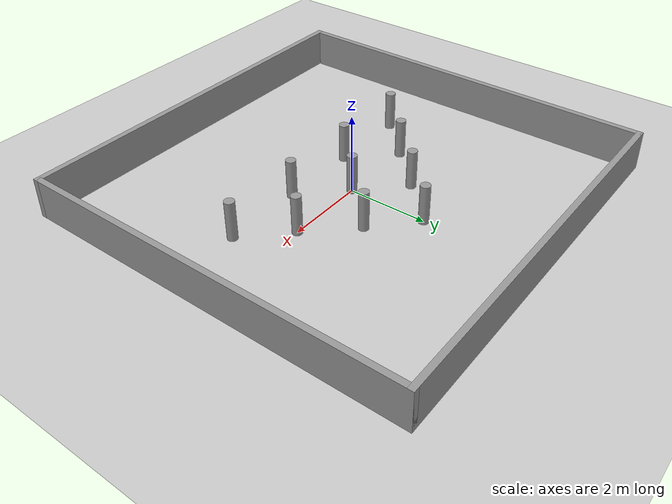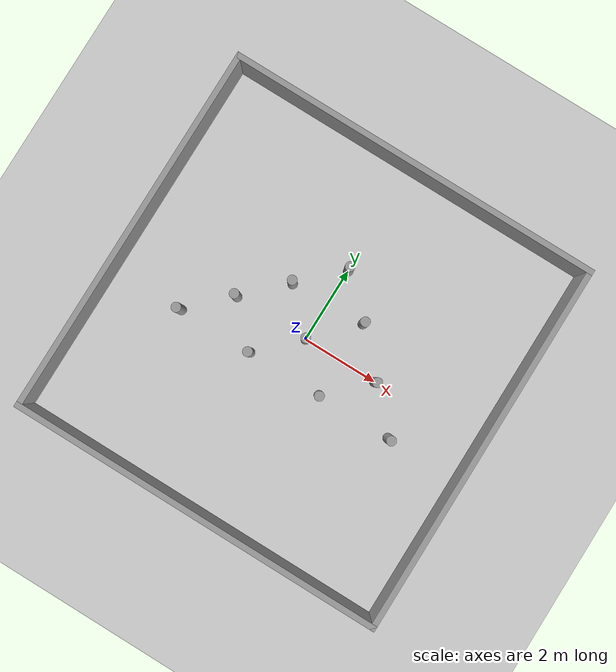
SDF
<sdf version="1.6">
 <world name="default">
  <light name="sun" type="directional">
   <pose>0 0 10 0 -0 0</pose>
   <diffuse>0.8 0.8 0.8 1</diffuse>
   <specular>0.2 0.2 0.2 1</specular>
   <attenuation>
    <range>1000</range>
    <constant>0.9</constant>
    <linear>0.01</linear>
    <quadratic>0.001</quadratic>
   </attenuation>
   <direction>-0.5 0.1 -0.9</direction>
  </light>
  <model name="ground_plane">
   <static>1</static>
   <link name="link">
    <collision name="collision">
     <geometry><plane><normal>0 0 1</normal><size>100 100</size></plane></geometry>
     <surface><friction><ode><mu>100</mu><mu2>50</mu2></ode></friction></surface>
    </collision>
    <visual name="visual">
     <cast_shadows>0</cast_shadows>
     <geometry><plane><normal>0 0 1</normal><size>100 100</size></plane></geometry>
     <material>
      <script><uri>file://media/materials/scripts/gazebo.material</uri><name>Gazebo/Grey</name></script>
     </material>
    </visual>
   </link>
  </model>
  <gravity>0 0 -9.8</gravity>
  <magnetic_field>6e-06 2.3e-05 -4.2e-05</magnetic_field>
  <atmosphere type="adiabatic"/>
  <physics name="default_physics" default="0" type="ode">
   <max_step_size>0.001</max_step_size>
   <real_time_factor>1</real_time_factor>
   <real_time_update_rate>1000</real_time_update_rate>
  </physics>
  <scene><ambient>0.4 0.4 0.4 1</ambient><background>0.7 0.7 0.7 1</background><shadows>1</shadows></scene>
  <spherical_coordinates>
   <surface_model>EARTH_WGS84</surface_model>
   <latitude_deg>0</latitude_deg>
   <longitude_deg>0</longitude_deg>
   <elevation>0</elevation>
   <heading_deg>0</heading_deg>
  </spherical_coordinates>
  <model name="Untitled">
   <pose>-0.00831 -0.012416 0 0 -0 0</pose>
   <link name="Wall_1">
    <collision name="Wall_1_Collision">
     <geometry><box><size>10 0.15 1</size></box></geometry>
     <pose>0 0 0.5 0 -0 0</pose>
    </collision>
    <visual name="Wall_1_Visual">
     <pose>0 0 0.5 0 -0 0</pose>
     <geometry><box><size>10 0.15 1</size></box></geometry>
     <material>
      <script><uri>file://media/materials/scripts/gazebo.material</uri><name>Gazebo/Grey</name></script>
      <ambient>1 1 1 1</ambient>
     </material>
     <meta><layer>0</layer></meta>
    </visual>
    <pose>-4.925 0 0 0 -0 1.5708</pose>
   </link>
   <link name="Wall_2">
    <collision name="Wall_2_Collision">
     <geometry><box><size>10 0.15 1</size></box></geometry>
     <pose>0 0 0.5 0 -0 0</pose>
    </collision>
    <visual name="Wall_2_Visual">
     <pose>0 0 0.5 0 -0 0</pose>
     <geometry><box><size>10 0.15 1</size></box></geometry>
     <material>
      <script><uri>file://media/materials/scripts/gazebo.material</uri><name>Gazebo/Grey</name></script>
      <ambient>1 1 1 1</ambient>
     </material>
     <meta><layer>0</layer></meta>
    </visual>
    <pose>-0 4.925 0 0 -0 0</pose>
   </link>
   <link name="Wall_3">
    <collision name="Wall_3_Collision">
     <geometry><box><size>10 0.15 1</size></box></geometry>
     <pose>0 0 0.5 0 -0 0</pose>
    </collision>
    <visual name="Wall_3_Visual">
     <pose>0 0 0.5 0 -0 0</pose>
     <geometry><box><size>10 0.15 1</size></box></geometry>
     <material>
      <script><uri>file://media/materials/scripts/gazebo.material</uri><name>Gazebo/Grey</name></script>
      <ambient>1 1 1 1</ambient>
     </material>
     <meta><layer>0</layer></meta>
    </visual>
    <pose>4.925 0 0 0 -0 -1.5708</pose>
   </link>
   <link name="Wall_4">
    <collision name="Wall_4_Collision">
     <geometry><box><size>10 0.15 1</size></box></geometry>
     <pose>0 0 0.5 0 -0 0</pose>
    </collision>
    <visual name="Wall_4_Visual">
     <pose>0 0 0.5 0 -0 0</pose>
     <geometry><box><size>10 0.15 1</size></box></geometry>
     <material>
      <script><uri>file://media/materials/scripts/gazebo.material</uri><name>Gazebo/Grey</name></script>
      <ambient>1 1 1 1</ambient>
     </material>
     <meta><layer>0</layer></meta>
    </visual>
    <pose>-0 -4.925 0 0 -0 3.14159</pose>
   </link>
   <static>1</static>
  </model>
  <model name="unit_cylinder">
   <pose>-0.999999 -1 0.499991 -0 -0 -8e-06</pose>
   <link name="link">
    <inertial>
     <mass>1</mass>
     <inertia><ixx>0.145833</ixx><ixy>0</ixy><ixz>0</ixz><iyy>0.145833</iyy><iyz>0</iyz><izz>0.125</izz></inertia>
    </inertial>
    <collision name="collision">
     <geometry><cylinder><radius>0.124931</radius><length>1</length></cylinder></geometry>
    </collision>
    <visual name="visual">
     <geometry><cylinder><radius>0.124931</radius><length>1</length></cylinder></geometry>
     <material>
      <script><name>Gazebo/Grey</name><uri>file://media/materials/scripts/gazebo.material</uri></script>
     </material>
    </visual>
   </link>
  </model>
  <model name="unit_cylinder_clone">
   <pose>1 -1 0.499991 -0 -0 -7e-06</pose>
   <link name="link">
    <inertial>
     <mass>1</mass>
     <inertia><ixx>0.145833</ixx><ixy>0</ixy><ixz>0</ixz><iyy>0.145833</iyy><iyz>0</iyz><izz>0.125</izz></inertia>
    </inertial>
    <collision name="collision">
     <geometry><cylinder><radius>0.124931</radius><length>1</length></cylinder></geometry>
    </collision>
    <visual name="visual">
     <geometry><cylinder><radius>0.124931</radius><length>1</length></cylinder></geometry>
     <material>
      <script><name>Gazebo/Grey</name><uri>file://media/materials/scripts/gazebo.material</uri></script>
     </material>
    </visual>
   </link>
  </model>
  <model name="unit_cylinder_clone_0">
   <pose>3 -1 0.499999 0 0 -8e-06</pose>
   <link name="link">
    <inertial>
     <mass>1</mass>
     <inertia><ixx>0.145833</ixx><ixy>0</ixy><ixz>0</ixz><iyy>0.145833</iyy><iyz>0</iyz><izz>0.125</izz></inertia>
    </inertial>
    <collision name="collision">
     <geometry><cylinder><radius>0.124931</radius><length>1</length></cylinder></geometry>
    </collision>
    <visual name="visual">
     <geometry><cylinder><radius>0.124931</radius><length>1</length></cylinder></geometry>
     <material>
      <script><name>Gazebo/Grey</name><uri>file://media/materials/scripts/gazebo.material</uri></script>
     </material>
    </visual>
   </link>
  </model>
  <model name="unit_cylinder_clone_1">
   <pose>-3 -1 0.499991 0 -0 -6e-06</pose>
   <link name="link">
    <inertial>
     <mass>1</mass>
     <inertia><ixx>0.145833</ixx><ixy>0</ixy><ixz>0</ixz><iyy>0.145833</iyy><iyz>0</iyz><izz>0.125</izz></inertia>
    </inertial>
    <collision name="collision">
     <geometry><cylinder><radius>0.124931</radius><length>1</length></cylinder></geometry>
    </collision>
    <visual name="visual">
     <geometry><cylinder><radius>0.124931</radius><length>1</length></cylinder></geometry>
     <material>
      <script><name>Gazebo/Grey</name><uri>file://media/materials/scripts/gazebo.material</uri></script>
     </material>
    </visual>
   </link>
  </model>
  <model name="unit_cylinder_clone_2">
   <pose>-2 0 0.499991 0 -0 -8e-06</pose>
   <link name="link">
    <inertial>
     <mass>1</mass>
     <inertia><ixx>0.145833</ixx><ixy>0</ixy><ixz>0</ixz><iyy>0.145833</iyy><iyz>0</iyz><izz>0.125</izz></inertia>
    </inertial>
    <collision name="collision">
     <geometry><cylinder><radius>0.124931</radius><length>1</length></cylinder></geometry>
    </collision>
    <visual name="visual">
     <geometry><cylinder><radius>0.124931</radius><length>1</length></cylinder></geometry>
     <material>
      <script><name>Gazebo/Grey</name><uri>file://media/materials/scripts/gazebo.material</uri></script>
     </material>
    </visual>
   </link>
  </model>
  <model name="unit_cylinder_clone_3">
   <pose>0 0 0.499991 0 -0 -7e-06</pose>
   <link name="link">
    <inertial>
     <mass>1</mass>
     <inertia><ixx>0.145833</ixx><ixy>0</ixy><ixz>0</ixz><iyy>0.145833</iyy><iyz>0</iyz><izz>0.125</izz></inertia>
    </inertial>
    <collision name="collision">
     <geometry><cylinder><radius>0.124931</radius><length>1</length></cylinder></geometry>
    </collision>
    <visual name="visual">
     <geometry><cylinder><radius>0.124931</radius><length>1</length></cylinder></geometry>
     <material>
      <script><name>Gazebo/Grey</name><uri>file://media/materials/scripts/gazebo.material</uri></script>
     </material>
    </visual>
   </link>
  </model>
  <model name="unit_cylinder_clone_4">
   <pose>2 0 0.499991 -0 -0 -6e-06</pose>
   <link name="link">
    <inertial>
     <mass>1</mass>
     <inertia><ixx>0.145833</ixx><ixy>0</ixy><ixz>0</ixz><iyy>0.145833</iyy><iyz>0</iyz><izz>0.125</izz></inertia>
    </inertial>
    <collision name="collision">
     <geometry><cylinder><radius>0.124931</radius><length>1</length></cylinder></geometry>
    </collision>
    <visual name="visual">
     <geometry><cylinder><radius>0.124931</radius><length>1</length></cylinder></geometry>
     <material>
      <script><name>Gazebo/Grey</name><uri>file://media/materials/scripts/gazebo.material</uri></script>
     </material>
    </visual>
   </link>
  </model>
  <model name="unit_cylinder_clone_5">
   <pose>-1 1 0.499991 0 -0 2.1e-05</pose>
   <link name="link">
    <inertial>
     <mass>1</mass>
     <inertia><ixx>0.145833</ixx><ixy>0</ixy><ixz>0</ixz><iyy>0.145833</iyy><iyz>0</iyz><izz>0.125</izz></inertia>
    </inertial>
    <collision name="collision">
     <geometry><cylinder><radius>0.124931</radius><length>1</length></cylinder></geometry>
    </collision>
    <visual name="visual">
     <geometry><cylinder><radius>0.124931</radius><length>1</length></cylinder></geometry>
     <material>
      <script><name>Gazebo/Grey</name><uri>file://media/materials/scripts/gazebo.material</uri></script>
     </material>
    </visual>
   </link>
  </model>
  <model name="unit_cylinder_clone_6">
   <pose>0.999899 1.07001 0.499991 -0 -0 -5.4e-05</pose>
   <link name="link">
    <inertial>
     <mass>1</mass>
     <inertia><ixx>0.145833</ixx><ixy>0</ixy><ixz>0</ixz><iyy>0.145833</iyy><iyz>0</iyz><izz>0.125</izz></inertia>
    </inertial>
    <collision name="collision">
     <geometry><cylinder><radius>0.124931</radius><length>1</length></cylinder></geometry>
    </collision>
    <visual name="visual">
     <geometry><cylinder><radius>0.124931</radius><length>1</length></cylinder></geometry>
     <material>
      <script><name>Gazebo/Grey</name><uri>file://media/materials/scripts/gazebo.material</uri></script>
     </material>
    </visual>
   </link>
  </model>
  <model name="unit_cylinder_clone_7">
   <pose>0 2 0.499999 0 0 -6e-06</pose>
   <link name="link">
    <inertial>
     <mass>1</mass>
     <inertia><ixx>0.145833</ixx><ixy>0</ixy><ixz>0</ixz><iyy>0.145833</iyy><iyz>0</iyz><izz>0.125</izz></inertia>
    </inertial>
    <collision name="collision">
     <geometry><cylinder><radius>0.124931</radius><length>1</length></cylinder></geometry>
    </collision>
    <visual name="visual">
     <geometry><cylinder><radius>0.124931</radius><length>1</length></cylinder></geometry>
     <material>
      <script><name>Gazebo/Grey</name><uri>file://media/materials/scripts/gazebo.material</uri></script>
     </material>
    </visual>
   </link>
  </model>
 </world>
</sdf>
